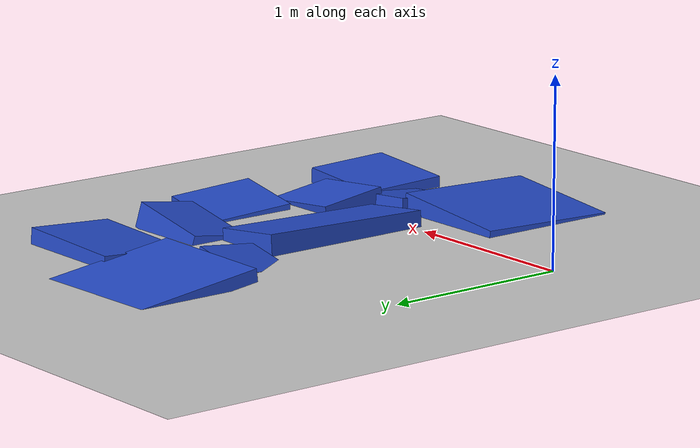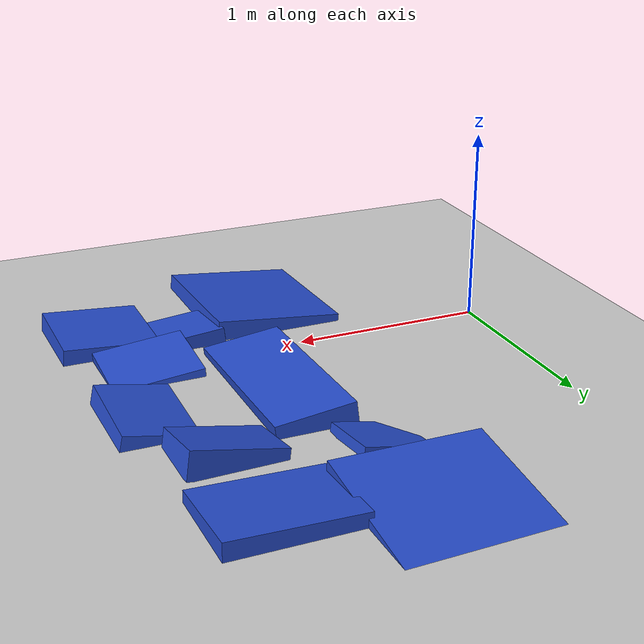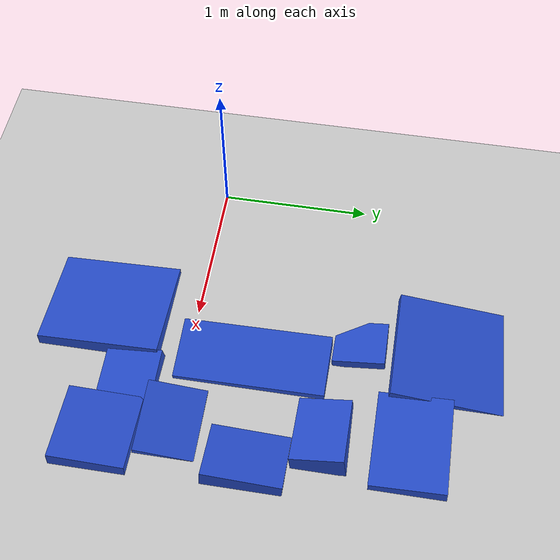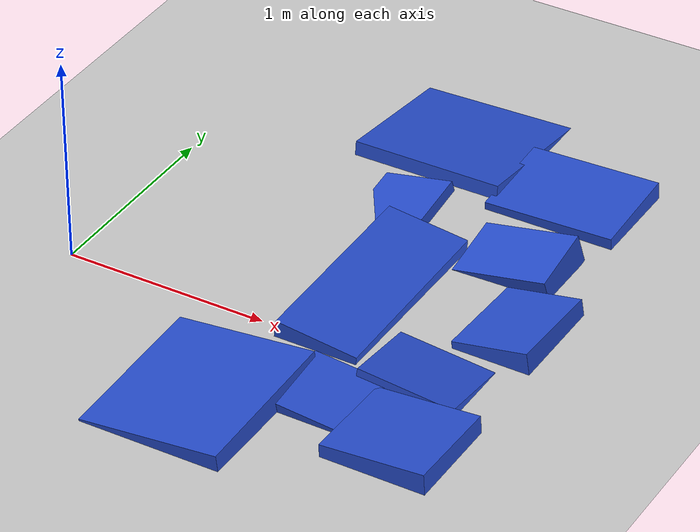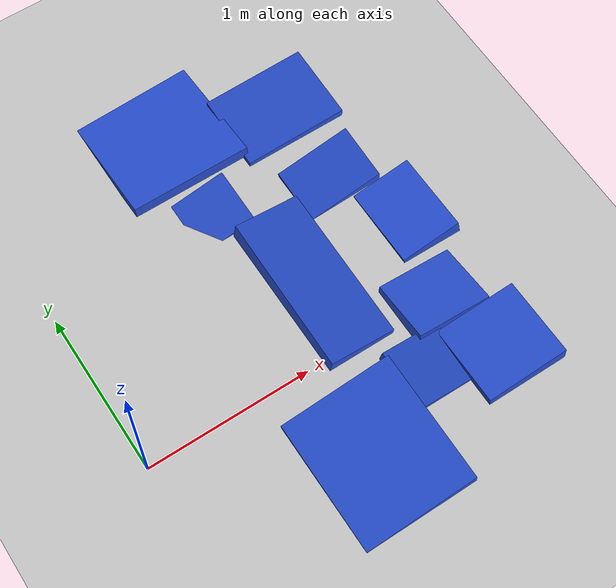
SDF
<?xml version="1.0" ?>
<sdf version="1.4">
    <world name="default">
        <physics type="ode">
            <gravity>0 0 -9.81</gravity>
            <ode>
                <solver>
                    <type>quick</type>
                    <iters>50</iters>
                    <sor>1.4</sor>
                </solver>
                <constraints>
                    <cfm>0.0</cfm>
                    <erp>0.2</erp>
                    <contact_max_correcting_vel>100.0</contact_max_correcting_vel>
                    <contact_surface_layer>0.0</contact_surface_layer>
                </constraints>
            </ode>
            <real_time_update_rate>1000</real_time_update_rate>
            <max_step_size>0.001</max_step_size>
        </physics>
        <!-- A global light source -->
        <include>
            <uri>model://sun</uri>
        </include>
        <!-- A ground plane -->
        <include>
            <uri>model://ground_plane</uri>
        </include>
        <model name="rectangle_0">
            <pose>1.304421 0.426374 0.000000 0.026861 0.117112 0.000000</pose>
            <static>true</static>
            <link name="rectangle_0_body">
                <inertial>
                    <mass>1.0</mass>
                    <inertia>
                        <ixx>1.0</ixx>
                        <ixy>0.0</ixy>
                        <ixz>0.0</ixz>
                        <iyy>1.0</iyy>
                        <iyz>0.0</iyz>
                        <izz>1.0</izz>
                    </inertia>
                </inertial>
                <collision name="collision">
                    <geometry>
                        <box>
                            <size>0.408051 0.977524 0.144951</size>
                        </box>
                    </geometry>
                    <surface>
                        <friction>
                            <ode>
                                <mu>100</mu>
                                <mu2>100</mu2>
                            </ode>
                        </friction>
                    </surface>
                </collision>
                <visual name="visual">
                    <geometry>
                        <box>
                            <size>0.408051 0.977524 0.144951</size>
                        </box>
                    </geometry>
                    <material>
                        <script>
                            <uri>file://media/materials/scripts/gazebo.material</uri>
                            <name>Gazebo/Blue</name>
                        </script>
                    </material>
                </visual>
            </link>
        </model>
        <model name="rectangle_1">
            <pose>1.046950 -0.587060 0.000000 0.035073 -0.101689 0.000000</pose>
            <static>true</static>
            <link name="rectangle_1_body">
                <inertial>
                    <mass>1.0</mass>
                    <inertia>
                        <ixx>1.0</ixx>
                        <ixy>0.0</ixy>
                        <ixz>0.0</ixz>
                        <iyy>1.0</iyy>
                        <iyz>0.0</iyz>
                        <izz>1.0</izz>
                    </inertia>
                </inertial>
                <collision name="collision">
                    <geometry>
                        <box>
                            <size>0.685801 0.798000 0.109699</size>
                        </box>
                    </geometry>
                    <surface>
                        <friction>
                            <ode>
                                <mu>100</mu>
                                <mu2>100</mu2>
                            </ode>
                        </friction>
                    </surface>
                </collision>
                <visual name="visual">
                    <geometry>
                        <box>
                            <size>0.685801 0.798000 0.109699</size>
                        </box>
                    </geometry>
                    <material>
                        <script>
                            <uri>file://media/materials/scripts/gazebo.material</uri>
                            <name>Gazebo/Blue</name>
                        </script>
                    </material>
                </visual>
            </link>
        </model>
        <model name="rectangle_2">
            <pose>1.952758 -0.446154 0.000000 -0.028684 -0.074241 0.000000</pose>
            <static>true</static>
            <link name="rectangle_2_body">
                <inertial>
                    <mass>1.0</mass>
                    <inertia>
                        <ixx>1.0</ixx>
                        <ixy>0.0</ixy>
                        <ixz>0.0</ixz>
                        <iyy>1.0</iyy>
                        <iyz>0.0</iyz>
                        <izz>1.0</izz>
                    </inertia>
                </inertial>
                <collision name="collision">
                    <geometry>
                        <box>
                            <size>0.502538 0.482106 0.139914</size>
                        </box>
                    </geometry>
                    <surface>
                        <friction>
                            <ode>
                                <mu>100</mu>
                                <mu2>100</mu2>
                            </ode>
                        </friction>
                    </surface>
                </collision>
                <visual name="visual">
                    <geometry>
                        <box>
                            <size>0.502538 0.482106 0.139914</size>
                        </box>
                    </geometry>
                    <material>
                        <script>
                            <uri>file://media/materials/scripts/gazebo.material</uri>
                            <name>Gazebo/Blue</name>
                        </script>
                    </material>
                </visual>
            </link>
        </model>
        <model name="rectangle_3">
            <pose>1.740699 1.489742 0.000000 0.064285 -0.029691 0.000000</pose>
            <static>true</static>
            <link name="rectangle_3_body">
                <inertial>
                    <mass>1.0</mass>
                    <inertia>
                        <ixx>1.0</ixx>
                        <ixy>0.0</ixy>
                        <ixz>0.0</ixz>
                        <iyy>1.0</iyy>
                        <iyz>0.0</iyz>
                        <izz>1.0</izz>
                    </inertia>
                </inertial>
                <collision name="collision">
                    <geometry>
                        <box>
                            <size>0.643049 0.473535 0.118954</size>
                        </box>
                    </geometry>
                    <surface>
                        <friction>
                            <ode>
                                <mu>100</mu>
                                <mu2>100</mu2>
                            </ode>
                        </friction>
                    </surface>
                </collision>
                <visual name="visual">
                    <geometry>
                        <box>
                            <size>0.643049 0.473535 0.118954</size>
                        </box>
                    </geometry>
                    <material>
                        <script>
                            <uri>file://media/materials/scripts/gazebo.material</uri>
                            <name>Gazebo/Blue</name>
                        </script>
                    </material>
                </visual>
            </link>
        </model>
        <model name="rectangle_4">
            <pose>1.072107 1.730631 0.000000 -0.128978 -0.004720 0.000000</pose>
            <static>true</static>
            <link name="rectangle_4_body">
                <inertial>
                    <mass>1.0</mass>
                    <inertia>
                        <ixx>1.0</ixx>
                        <ixy>0.0</ixy>
                        <ixz>0.0</ixz>
                        <iyy>1.0</iyy>
                        <iyz>0.0</iyz>
                        <izz>1.0</izz>
                    </inertia>
                </inertial>
                <collision name="collision">
                    <geometry>
                        <box>
                            <size>0.745977 0.837258 0.069463</size>
                        </box>
                    </geometry>
                    <surface>
                        <friction>
                            <ode>
                                <mu>100</mu>
                                <mu2>100</mu2>
                            </ode>
                        </friction>
                    </surface>
                </collision>
                <visual name="visual">
                    <geometry>
                        <box>
                            <size>0.745977 0.837258 0.069463</size>
                        </box>
                    </geometry>
                    <material>
                        <script>
                            <uri>file://media/materials/scripts/gazebo.material</uri>
                            <name>Gazebo/Blue</name>
                        </script>
                    </material>
                </visual>
            </link>
        </model>
        <model name="rectangle_5">
            <pose>1.542821 -0.334288 0.000000 0.101380 0.088408 0.000000</pose>
            <static>true</static>
            <link name="rectangle_5_body">
                <inertial>
                    <mass>1.0</mass>
                    <inertia>
                        <ixx>1.0</ixx>
                        <ixy>0.0</ixy>
                        <ixz>0.0</ixz>
                        <iyy>1.0</iyy>
                        <iyz>0.0</iyz>
                        <izz>1.0</izz>
                    </inertia>
                </inertial>
                <collision name="collision">
                    <geometry>
                        <box>
                            <size>0.363935 0.364992 0.093824</size>
                        </box>
                    </geometry>
                    <surface>
                        <friction>
                            <ode>
                                <mu>100</mu>
                                <mu2>100</mu2>
                            </ode>
                        </friction>
                    </surface>
                </collision>
                <visual name="visual">
                    <geometry>
                        <box>
                            <size>0.363935 0.364992 0.093824</size>
                        </box>
                    </geometry>
                    <material>
                        <script>
                            <uri>file://media/materials/scripts/gazebo.material</uri>
                            <name>Gazebo/Blue</name>
                        </script>
                    </material>
                </visual>
            </link>
        </model>
        <model name="rectangle_6">
            <pose>1.761168 0.937790 0.000000 0.153540 -0.189512 0.000000</pose>
            <static>true</static>
            <link name="rectangle_6_body">
                <inertial>
                    <mass>1.0</mass>
                    <inertia>
                        <ixx>1.0</ixx>
                        <ixy>0.0</ixy>
                        <ixz>0.0</ixz>
                        <iyy>1.0</iyy>
                        <iyz>0.0</iyz>
                        <izz>1.0</izz>
                    </inertia>
                </inertial>
                <collision name="collision">
                    <geometry>
                        <box>
                            <size>0.470968 0.338500 0.139552</size>
                        </box>
                    </geometry>
                    <surface>
                        <friction>
                            <ode>
                                <mu>100</mu>
                                <mu2>100</mu2>
                            </ode>
                        </friction>
                    </surface>
                </collision>
                <visual name="visual">
                    <geometry>
                        <box>
                            <size>0.470968 0.338500 0.139552</size>
                        </box>
                    </geometry>
                    <material>
                        <script>
                            <uri>file://media/materials/scripts/gazebo.material</uri>
                            <name>Gazebo/Blue</name>
                        </script>
                    </material>
                </visual>
            </link>
        </model>
        <model name="rectangle_7">
            <pose>1.076300 1.098505 0.000000 0.122591 -0.195090 0.000000</pose>
            <static>true</static>
            <link name="rectangle_7_body">
                <inertial>
                    <mass>1.0</mass>
                    <inertia>
                        <ixx>1.0</ixx>
                        <ixy>0.0</ixy>
                        <ixz>0.0</ixz>
                        <iyy>1.0</iyy>
                        <iyz>0.0</iyz>
                        <izz>1.0</izz>
                    </inertia>
                </inertial>
                <collision name="collision">
                    <geometry>
                        <box>
                            <size>0.349169 0.340539 0.052852</size>
                        </box>
                    </geometry>
                    <surface>
                        <friction>
                            <ode>
                                <mu>100</mu>
                                <mu2>100</mu2>
                            </ode>
                        </friction>
                    </surface>
                </collision>
                <visual name="visual">
                    <geometry>
                        <box>
                            <size>0.349169 0.340539 0.052852</size>
                        </box>
                    </geometry>
                    <material>
                        <script>
                            <uri>file://media/materials/scripts/gazebo.material</uri>
                            <name>Gazebo/Blue</name>
                        </script>
                    </material>
                </visual>
            </link>
        </model>
        <model name="rectangle_8">
            <pose>1.820348 -0.008721 0.000000 -0.130244 0.095755 0.000000</pose>
            <static>true</static>
            <link name="rectangle_8_body">
                <inertial>
                    <mass>1.0</mass>
                    <inertia>
                        <ixx>1.0</ixx>
                        <ixy>0.0</ixy>
                        <ixz>0.0</ixz>
                        <iyy>1.0</iyy>
                        <iyz>0.0</iyz>
                        <izz>1.0</izz>
                    </inertia>
                </inertial>
                <collision name="collision">
                    <geometry>
                        <box>
                            <size>0.468319 0.382563 0.094850</size>
                        </box>
                    </geometry>
                    <surface>
                        <friction>
                            <ode>
                                <mu>100</mu>
                                <mu2>100</mu2>
                            </ode>
                        </friction>
                    </surface>
                </collision>
                <visual name="visual">
                    <geometry>
                        <box>
                            <size>0.468319 0.382563 0.094850</size>
                        </box>
                    </geometry>
                    <material>
                        <script>
                            <uri>file://media/materials/scripts/gazebo.material</uri>
                            <name>Gazebo/Blue</name>
                        </script>
                    </material>
                </visual>
            </link>
        </model>
        <model name="rectangle_9">
            <pose>1.997329 0.501014 0.000000 -0.044905 -0.182541 0.000000</pose>
            <static>true</static>
            <link name="rectangle_9_body">
                <inertial>
                    <mass>1.0</mass>
                    <inertia>
                        <ixx>1.0</ixx>
                        <ixy>0.0</ixy>
                        <ixz>0.0</ixz>
                        <iyy>1.0</iyy>
                        <iyz>0.0</iyz>
                        <izz>1.0</izz>
                    </inertia>
                </inertial>
                <collision name="collision">
                    <geometry>
                        <box>
                            <size>0.372750 0.503468 0.107684</size>
                        </box>
                    </geometry>
                    <surface>
                        <friction>
                            <ode>
                                <mu>100</mu>
                                <mu2>100</mu2>
                            </ode>
                        </friction>
                    </surface>
                </collision>
                <visual name="visual">
                    <geometry>
                        <box>
                            <size>0.372750 0.503468 0.107684</size>
                        </box>
                    </geometry>
                    <material>
                        <script>
                            <uri>file://media/materials/scripts/gazebo.material</uri>
                            <name>Gazebo/Blue</name>
                        </script>
                    </material>
                </visual>
            </link>
        </model>
    </world>
</sdf>
